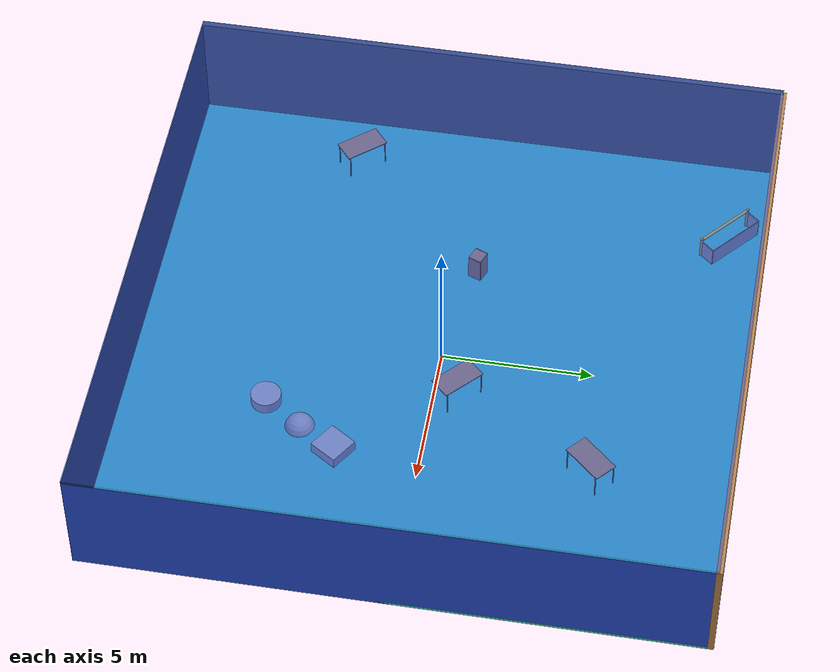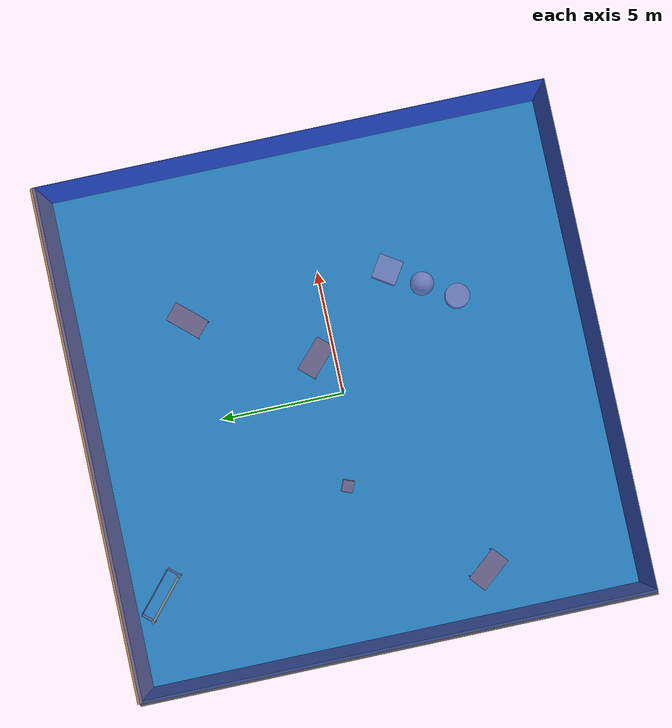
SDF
<sdf version="1.4">
 <world name="default">
  <physics type="ode">
   <max_step_size>0.001</max_step_size>
   <real_time_factor>1</real_time_factor>
   <real_time_update_rate>1000</real_time_update_rate>
   <gravity>0 0 -9.8</gravity>
  </physics>
  <scene><ambient>0.4 0.4 0.4 1</ambient><background>0.7 0.7 0.7 1</background><shadows>1</shadows></scene>
  <model name="Surrounding">
   <static>1</static>
   <link name="Ceiling">
    <collision name="Ceiling_Collision"><geometry><box><size>20 20 0.1</size></box></geometry></collision>
    <visual name="Ceiling_Visual">
     <geometry><box><size>20 20 0.1</size></box></geometry>
     <material>
      <script><uri>file://media/materials/scripts/gazebo.material</uri><name>Gazebo/BlueTransparent</name></script>
     </material>
    </visual>
    <pose>0 0 4.05 0 0 0</pose>
   </link>
   <link name="Wall_South">
    <collision name="Wall_South_Collision">
     <geometry><box><size>20 0 4</size></box></geometry>
     <pose>0 0 2 0 -0 0</pose>
    </collision>
    <visual name="Wall_South_Visual">
     <pose>0 0 2 0 -0 0</pose>
     <geometry><box><size>20 0 4</size></box></geometry>
     <material>
      <script><uri>file://media/materials/scripts/gazebo.material</uri><name>Gazebo/FlatBlack</name></script>
     </material>
    </visual>
    <velocity_decay><linear>0</linear><angular>0</angular></velocity_decay>
    <pose>0 -10 0 0 -0 0</pose>
   </link>
   <link name="Wall_East">
    <collision name="Wall_21_Collision">
     <geometry><box><size>20 0 4</size></box></geometry>
     <pose>0 0 2 0 -0 0</pose>
    </collision>
    <visual name="Wall_21_Visual">
     <pose>0 0 2 0 -0 0</pose>
     <geometry><box><size>20 0 4</size></box></geometry>
     <material>
      <script><uri>file://media/materials/scripts/gazebo.material</uri><name>Gazebo/Blue</name></script>
     </material>
    </visual>
    <velocity_decay><linear>0</linear><angular>0</angular></velocity_decay>
    <pose>10 0 0 0 -0 1.5708</pose>
   </link>
   <link name="Wall_North">
    <collision name="Wall_22_Collision">
     <geometry><box><size>20 0.2 4</size></box></geometry>
     <pose>0 0 2 0 -0 0</pose>
    </collision>
    <visual name="Wall_22_Visual">
     <pose>0 0 2 0 -0 0</pose>
     <geometry><box><size>20 0.2 4</size></box></geometry>
     <material>
      <script><uri>file://media/materials/scripts/gazebo.material</uri><name>Gazebo/WoodFloor</name></script>
     </material>
    </visual>
    <velocity_decay><linear>0</linear><angular>0</angular></velocity_decay>
    <pose>0 10 0 0 -0 0</pose>
   </link>
   <link name="Wall_West">
    <collision name="Wall_23_Collision">
     <geometry><box><size>20 0.2 4</size></box></geometry>
     <pose>0 0 2 0 -0 0</pose>
    </collision>
    <visual name="Wall_23_Visual">
     <pose>0 0 2 0 -0 0</pose>
     <geometry><box><size>20 0.2 4</size></box></geometry>
     <material>
      <script><uri>file://media/materials/scripts/gazebo.material</uri><name>Gazebo/DarkGrey</name></script>
     </material>
    </visual>
    <velocity_decay><linear>0</linear><angular>0</angular></velocity_decay>
    <pose>-10 0 0 0 0 -1.5708</pose>
   </link>
   <link name="Ground_link">
    <collision name="collision">
     <pose>0 0 .05 0 -0 0</pose>
     <geometry><box><size>20 20 0.1</size></box></geometry>
    </collision>
    <visual name="visual">
     <pose>0 0 .05 0 -0 0</pose>
     <geometry><box><size>20 20 0.1</size></box></geometry>
     <material>
      <script>
       <uri>file://media/materials/scripts/gazebo.material</uri>
       <name>Gazebo/TurquoiseGlowOutline</name>
      </script>
     </material>
    </visual>
   </link>
   <static>1</static>
  </model>
  <spherical_coordinates>
   <surface_model>EARTH_WGS84</surface_model>
   <latitude_deg>0</latitude_deg>
   <longitude_deg>0</longitude_deg>
   <elevation>0</elevation>
   <heading_deg>0</heading_deg>
  </spherical_coordinates>
  <light name="lightball_0" type="diffuse">
   <diffuse>0.8 0.8 0.8 1</diffuse>
   <specular>0.2 0.2 0.2 1</specular>
   <attenuation>
    <range>100</range>
    <constant>0.7</constant>
    <linear>0.01</linear>
    <quadratic>0.001</quadratic>
   </attenuation>
   <direction>-0.5 0.1 -0.9</direction>
   <pose>4.09387390023 0.674252719906 1.68369554092 0 0 0</pose>
  </light>
  <light name="lightball_1" type="diffuse">
   <diffuse>0.8 0.8 0.8 1</diffuse>
   <specular>0.2 0.2 0.2 1</specular>
   <attenuation>
    <range>100</range>
    <constant>0.7</constant>
    <linear>0.01</linear>
    <quadratic>0.001</quadratic>
   </attenuation>
   <direction>-0.5 0.1 -0.9</direction>
   <pose>-3.18248141435 9.81189301711 0.747380889639 0 0 0</pose>
  </light>
  <light name="lightball_2" type="diffuse">
   <diffuse>0.8 0.8 0.8 1</diffuse>
   <specular>0.2 0.2 0.2 1</specular>
   <attenuation>
    <range>100</range>
    <constant>0.7</constant>
    <linear>0.01</linear>
    <quadratic>0.001</quadratic>
   </attenuation>
   <direction>-0.5 0.1 -0.9</direction>
   <pose>0.74024953074 -6.58796175102 1.06133566274 0 0 0</pose>
  </light>
  <include><uri>model://table</uri><pose>-8.07649152288 -4.1433371784 0 0 0 2.26924902768</pose></include>
  <include>
   <uri>model://robocup_3Dsim_goal</uri>
   <pose>-6.54293079274 8.60135236005 0 0 0 0.854113257606</pose>
  </include>
  <include><uri>model://cabinet</uri><pose>-3.68131086676 0.610048866029 0 0 0 1.18449746334</pose></include>
  <include><uri>model://table</uri><pose>1.57775595876 0.777547482624 0 0 0 2.38575605745</pose></include>
  <include>
   <uri>model://textured_shapes</uri>
   <pose>3.67418480012 -4.03842061975 0 0 0 2.57119961581</pose>
  </include>
  <include><uri>model://table</uri><pose>4.11522923803 5.47701960027 0 0 0 0.839049048472</pose></include>
 </world>
</sdf>

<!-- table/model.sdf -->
<sdf version="1.5">
  <model name="table">
    <static>true</static>
    <link name="link">
      <collision name="surface">
        <pose>0 0 1.0 0 0 0</pose>
        <geometry>
          <box>
            <size>1.5 0.8 0.03</size>
          </box>
        </geometry>
        <surface>
          <friction>
            <ode>
              <mu>0.6</mu>
              <mu2>0.6</mu2>
            </ode>
          </friction>
        </surface>
      </collision>
      <visual name="visual1">
        <pose>0 0 1.0 0 0 0</pose>
        <geometry>
          <box>
            <size>1.5 0.8 0.03</size>
          </box>
        </geometry>
        <material>
          <script>
            <uri>model://media/materials/scripts/gazebo.material</uri>
            <name>Gazebo/Wood</name>
          </script>
        </material>
      </visual>
      <collision name="front_left_leg">
        <pose>0.68 0.38 0.5 0 0 0</pose>
        <geometry>
          <cylinder>
            <radius>0.02</radius>
            <length>1.0</length>
          </cylinder>
        </geometry>
      </collision>
      <visual name="front_left_leg">
        <pose>0.68 0.38 0.5 0 0 0</pose>
        <geometry>
          <cylinder>
            <radius>0.02</radius>
            <length>1.0</length>
          </cylinder>
        </geometry>
        <material>
          <script>
            <uri>model://media/materials/scripts/gazebo.material</uri>
            <name>Gazebo/Grey</name>
          </script>
        </material>
      </visual>
      <collision name="front_right_leg">
        <pose>0.68 -0.38 0.5 0 0 0</pose>
        <geometry>
          <cylinder>
            <radius>0.02</radius>
            <length>1.0</length>
          </cylinder>
        </geometry>
      </collision>
      <visual name="front_right_leg">
        <pose>0.68 -0.38 0.5 0 0 0</pose>
        <geometry>
          <cylinder>
            <radius>0.02</radius>
            <length>1.0</length>
          </cylinder>
        </geometry>
        <material>
          <script>
            <uri>model://media/materials/scripts/gazebo.material</uri>
            <name>Gazebo/Grey</name>
          </script>
        </material>
      </visual>
      <collision name="back_right_leg">
        <pose>-0.68 -0.38 0.5 0 0 0</pose>
        <geometry>
          <cylinder>
            <radius>0.02</radius>
            <length>1.0</length>
          </cylinder>
        </geometry>
      </collision>
      <visual name="back_right_leg">
        <pose>-0.68 -0.38 0.5 0 0 0</pose>
        <geometry>
          <cylinder>
            <radius>0.02</radius>
            <length>1.0</length>
          </cylinder>
        </geometry>
        <material>
          <script>
            <uri>model://media/materials/scripts/gazebo.material</uri>
            <name>Gazebo/Grey</name>
          </script>
        </material>
      </visual>
      <collision name="back_left_leg">
        <pose>-0.68 0.38 0.5 0 0 0</pose>
        <geometry>
          <cylinder>
            <radius>0.02</radius>
            <length>1.0</length>
          </cylinder>
        </geometry>
      </collision>
      <visual name="back_left_leg">
        <pose>-0.68 0.38 0.5 0 0 0</pose>
        <geometry>
          <cylinder>
            <radius>0.02</radius>
            <length>1.0</length>
          </cylinder>
        </geometry>
        <material>
          <script>
            <uri>model://media/materials/scripts/gazebo.material</uri>
            <name>Gazebo/Grey</name>
          </script>
        </material>
      </visual>
    </link>
  </model>
</sdf>

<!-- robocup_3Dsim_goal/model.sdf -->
<sdf version="1.5">
  <model name="robocup_3d_goal">
    <static>true</static>
    <link name="left_post">
      <pose>0 1.05 0.45 0 0 0</pose>
      <collision name="collision">
        <geometry>
          <cylinder>
            <radius>0.05</radius>
            <length>0.9</length>
          </cylinder>
        </geometry>
      </collision>
      <visual name="visual">
        <geometry>
          <cylinder>
            <radius>0.05</radius>
            <length>0.9</length>
          </cylinder>
        </geometry>
        <material>
          <script>
            <uri>file://media/materials/scripts/gazebo.material</uri>
            <name>Gazebo/ZincYellow</name>
          </script>
        </material>
      </visual>
    </link>
    <link name="left_support_horiz_lower">
      <pose>0.30 1.05 0.01 0 0 0</pose>
      <collision name="collision">
        <geometry>
          <box>
            <size>0.50 0.02 0.02</size>
          </box>
        </geometry>
      </collision>
      <visual name="visual">
        <geometry>
          <box>
            <size>0.50 0.02 0.02</size>
          </box>
        </geometry>
        <material>
          <script>
            <uri>file://media/materials/scripts/gazebo.material</uri>
            <name>Gazebo/White</name>
          </script>
        </material>
      </visual>
    </link>
    <link name="left_support_horiz_upper">
      <pose>0.30 1.05 0.79 0 0 0</pose>
      <collision name="collision">
        <geometry>
          <box>
            <size>0.50 0.02 0.02</size>
          </box>
        </geometry>
      </collision>
      <visual name="visual">
        <geometry>
          <box>
            <size>0.50 0.02 0.02</size>
          </box>
        </geometry>
        <material>
          <script>
            <uri>file://media/materials/scripts/gazebo.material</uri>
            <name>Gazebo/White</name>
          </script>
        </material>
      </visual>
    </link>
    <link name="left_support_vertical">
      <pose>0.56 1.05 0.4 0 1.5708 0</pose>
      <collision name="collision">
        <geometry>
          <box>
            <size>0.80 0.02 0.02</size>
          </box>
        </geometry>
      </collision>
      <visual name="visual">
        <geometry>
          <box>
            <size>0.80 0.02 0.02</size>
          </box>
        </geometry>
        <material>
          <script>
            <uri>file://media/materials/scripts/gazebo.material</uri>
            <name>Gazebo/White</name>
          </script>
        </material>
      </visual>
    </link>
    <link name="right_support_horiz_lower">
      <pose>0.30 -1.05 0.01 0 0 0</pose>
      <collision name="collision">
        <geometry>
          <box>
            <size>0.50 0.02 0.02</size>
          </box>
        </geometry>
      </collision>
      <visual name="visual">
        <geometry>
          <box>
            <size>0.50 0.02 0.02</size>
          </box>
        </geometry>
        <material>
          <script>
            <uri>file://media/materials/scripts/gazebo.material</uri>
            <name>Gazebo/White</name>
          </script>
        </material>
      </visual>
    </link>
    <link name="right_support_horiz_upper">
      <pose>0.30 -1.05 0.79 0 0 0</pose>
      <collision name="collision">
        <geometry>
          <box>
            <size>0.50 0.02 0.02</size>
          </box>
        </geometry>
      </collision>
      <visual name="visual">
        <geometry>
          <box>
            <size>0.50 0.02 0.02</size>
          </box>
        </geometry>
        <material>
          <script>
            <uri>file://media/materials/scripts/gazebo.material</uri>
            <name>Gazebo/White</name>
          </script>
        </material>
      </visual>
    </link>
    <link name="right_support_vertical">
      <pose>0.56 -1.05 0.4 0 1.5708 0</pose>
      <collision name="collision">
        <geometry>
          <box>
            <size>0.80 0.02 0.02</size>
          </box>
        </geometry>
      </collision>
      <visual name="visual">
        <geometry>
          <box>
            <size>0.80 0.02 0.02</size>
          </box>
        </geometry>
        <material>
          <script>
            <uri>file://media/materials/scripts/gazebo.material</uri>
            <name>Gazebo/White</name>
          </script>
        </material>
      </visual>
    </link>
    <link name="center_support_horiz_lower">
      <pose>0.56 0 0.01 0 1.5708 0</pose>
      <collision name="collision">
        <geometry>
          <box>
            <size>0.02 2.08 0.02</size>
          </box>
        </geometry>
      </collision>
      <visual name="visual">
        <geometry>
          <box>
            <size>0.02 2.08 0.02</size>
          </box>
        </geometry>
        <material>
          <script>
            <uri>file://media/materials/scripts/gazebo.material</uri>
            <name>Gazebo/White</name>
          </script>
        </material>
      </visual>
    </link>
    <link name="center_support_horiz_upper">
      <pose>0.56 0 0.79 0 1.5708 0</pose>
      <collision name="collision">
        <geometry>
          <box>
            <size>0.02 2.08 0.02</size>
          </box>
        </geometry>
      </collision>
      <visual name="visual">
        <geometry>
          <box>
            <size>0.02 2.08 0.02</size>
          </box>
        </geometry>
        <material>
          <script>
            <uri>file://media/materials/scripts/gazebo.material</uri>
            <name>Gazebo/White</name>
          </script>
        </material>
      </visual>
    </link>
    <link name="right_post">
      <pose>0 -1.05 0.45 0 0 0</pose>
      <collision name="collision">
        <geometry>
          <cylinder>
            <radius>0.05</radius>
            <length>0.9</length>
          </cylinder>
        </geometry>
      </collision>
      <visual name="visual">
        <geometry>
          <cylinder>
            <radius>0.05</radius>
            <length>0.9</length>
          </cylinder>
        </geometry>
        <material>
          <script>
            <uri>file://media/materials/scripts/gazebo.material</uri>
            <name>Gazebo/ZincYellow</name>
          </script>
        </material>
      </visual>
    </link>
    <link name="crossbar">
      <pose>0 0 0.85 1.57 1.57 0</pose>
      <collision name="collision">
        <geometry>
          <cylinder>
            <radius>0.05</radius>
            <length>2.0</length>
          </cylinder>
        </geometry>
      </collision>
      <visual name="visual">
        <geometry>
          <cylinder>
            <radius>0.05</radius>
            <length>2.0</length>
          </cylinder>
        </geometry>
        <material>
          <script>
            <uri>file://media/materials/scripts/gazebo.material</uri>
            <name>Gazebo/ZincYellow</name>
          </script>
        </material>
      </visual>
    </link>
    <link name="center_net">
      <pose>0.56 0 0.40 0 0 0</pose>
      <collision name="collision">
        <geometry>
          <box>
            <size>0.01 2.1 0.80</size>
          </box>
        </geometry>
      </collision>
      <visual name="visual">
        <geometry>
          <box>
            <size>0.01 2.1 0.80</size>
          </box>
        </geometry>
        <material>
          <script>
            <uri>model://../model_source/models/robocup09_spl_field/materials/scripts/</uri>
            <uri>model://../model_source/models/robocup09_spl_field/materials/textures/</uri>
            <name>RoboCup/Net</name>
          </script>
        </material>
      </visual>
    </link>
    <link name="left_net">
      <pose>0.30 1.05 0.40 0 0 0</pose>
      <collision name="collision">
        <geometry>
          <box>
            <size>0.50 0.01 0.76</size>
          </box>
        </geometry>
      </collision>
      <visual name="visual">
        <geometry>
          <box>
            <size>0.50 0.01 0.76</size>
          </box>
        </geometry>
        <material>
          <script>
            <uri>model://../model_source/models/robocup09_spl_field/materials/scripts/</uri>
            <uri>model://../model_source/models/robocup09_spl_field/materials/textures/</uri>
            <name>RoboCup/Net</name>
          </script>
        </material>
      </visual>
    </link>
    <link name="right_net">
      <pose>0.30 -1.05 0.40 0 0 0</pose>
      <collision name="collision">
        <geometry>
          <box>
            <size>0.50 0.01 0.76</size>
          </box>
        </geometry>
      </collision>
      <visual name="visual">
        <geometry>
          <box>
            <size>0.50 0.01 0.76</size>
          </box>
        </geometry>
        <material>
          <script>
            <uri>model://../model_source/models/robocup09_spl_field/materials/scripts/</uri>
            <uri>model://../model_source/models/robocup09_spl_field/materials/textures/</uri>
            <name>RoboCup/Net</name>
          </script>
        </material>
      </visual>
    </link>
  </model>
</sdf>

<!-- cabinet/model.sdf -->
<sdf version="1.5">
  <model name="cabinet">
    <static>true</static>
    <link name="cabinet_bottom_plate">
      <inertial>
        <pose>0 0 -1 0 0 0</pose>
        <inertia>
          <ixx>2.050000</ixx>
          <ixy>0</ixy>
          <ixz>0</ixz>
          <iyy>2.050000</iyy>
          <iyz>0</iyz>
          <izz>2.050000</izz>
        </inertia>
        <mass>25.000000</mass>
      </inertial>
      <collision name="cabinet_bottom_plate_geom">
        <pose>0 0 0.010000 0 0 0</pose>
        <geometry>
          <box>
            <size>0.450000 0.450000 0.020000</size>
          </box>
        </geometry>
      </collision>
      <visual name="cabinet_bottom_plate_geom_visual">
        <pose>0 0 0.010000 0 0 0</pose>
        <geometry>
          <box>
            <size>0.450000 0.450000 0.020000</size>
          </box>
        </geometry>
        <material>
          <script>
            <uri>model://media/materials/scripts/gazebo.material</uri>
            <name>Gazebo/Wood</name>
          </script>
        </material>
      </visual>
      <collision name="cabinet_bottom_plate_geom_cabinet_back_plate">
        <pose>0.235000 0 0.510000 0 0 0</pose>
        <geometry>
          <box>
            <size>0.020000 0.450000 1.020000</size>
          </box>
        </geometry>
      </collision>
      <visual name="cabinet_bottom_plate_geom_cabinet_back_plate_visual">
        <pose>0.235000 0 0.510000 0 0 0</pose>
        <geometry>
          <box>
            <size>0.020000 0.450000 1.020000</size>
          </box>
        </geometry>
        <material>
          <script>
            <uri>model://media/materials/scripts/gazebo.material</uri>
            <name>Gazebo/Wood</name>
          </script>
        </material>
      </visual>
      <collision name="cabinet_bottom_plate_geom_cabinet_left_plate">
        <pose>0 0.235000 0.510000 0 0 0</pose>
        <geometry>
          <box>
            <size>0.450000 0.020000 1.020000</size>
          </box>
        </geometry>
      </collision>
      <visual name="cabinet_bottom_plate_geom_cabinet_left_plate_visual">
        <pose>0 0.235000 0.510000 0 0 0</pose>
        <geometry>
          <box>
            <size>0.450000 0.020000 1.020000</size>
          </box>
        </geometry>
        <material>
          <script>
            <uri>model://media/materials/scripts/gazebo.material</uri>
            <name>Gazebo/Wood</name>
          </script>
        </material>
      </visual>
      <collision name="cabinet_bottom_plate_geom_cabinet_middle_plate">
        <pose>0 0 0.510000 0 0 0</pose>
        <geometry>
          <box>
            <size>0.450000 0.450000 0.020000</size>
          </box>
        </geometry>
      </collision>
      <visual name="cabinet_bottom_plate_geom_cabinet_middle_plate_visual">
        <pose>0 0 0.510000 0 0 0</pose>
        <geometry>
          <box>
            <size>0.450000 0.450000 0.020000</size>
          </box>
        </geometry>
        <material>
          <script>
            <uri>model://media/materials/scripts/gazebo.material</uri>
            <name>Gazebo/Wood</name>
          </script>
        </material>
      </visual>
      <collision name="cabinet_bottom_plate_geom_cabinet_right_plate">
        <pose>0 -0.235000 0.510000 0 0 0</pose>
        <geometry>
          <box>
            <size>0.450000 0.020000 1.020000</size>
          </box>
        </geometry>
      </collision>
      <visual name="cabinet_bottom_plate_geom_cabinet_right_plate_visual">
        <pose>0 -0.235000 0.510000 0 0 0</pose>
        <geometry>
          <box>
            <size>0.450000 0.020000 1.020000</size>
          </box>
        </geometry>
        <material>
          <script>
            <uri>model://media/materials/scripts/gazebo.material</uri>
            <name>Gazebo/Wood</name>
          </script>
        </material>
      </visual>
      <collision name="cabinet_bottom_plate_geom_cabinet_top_plate">
        <pose>0 0 1.010000 0 0 0</pose>
        <geometry>
          <box>
            <size>0.450000 0.450000 0.020000</size>
          </box>
        </geometry>
      </collision>
      <visual name="cabinet_bottom_plate_geom_cabinet_top_plate_visual">
        <pose>0 0 1.010000 0 0 0</pose>
        <geometry>
          <box>
            <size>0.450000 0.450000 0.020000</size>
          </box>
        </geometry>
        <material>
          <script>
            <uri>model://media/materials/scripts/gazebo.material</uri>
            <name>Gazebo/Wood</name>
          </script>
        </material>
      </visual>
    </link>
  </model>
</sdf>

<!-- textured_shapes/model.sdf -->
<sdf version="1.6">
  <model name="textured_shapes">
    <pose>0 0 0.5 0 0 0</pose>
    <link name="box">
      <pose>0 -1.5 0 0 0 0</pose>
      <collision name="collision">
        <geometry>
          <box>
            <size>1 1 1</size>
          </box>
        </geometry>
      </collision>
      <visual name="visual">
        <geometry>
          <box>
            <size>1 1 1</size>
          </box>
        </geometry>
        <material>
          <script>
            <uri>model://../model_source/models/textured_shapes/materials/scripts</uri>
            <uri>model://../model_source/models/textured_shapes/materials/textures</uri>
            <name>TexturedShape/Squares</name>
          </script>
        </material>
      </visual>
    </link>
    <link name="sphere">
      <collision name="collision">
        <geometry>
          <sphere>
            <radius>0.5</radius>
          </sphere>
        </geometry>
      </collision>
      <visual name="visual">
        <geometry>
          <sphere>
            <radius>0.5</radius>
          </sphere>
        </geometry>
        <material>
          <script>
            <uri>model://../model_source/models/textured_shapes/materials/scripts</uri>
            <uri>model://../model_source/models/textured_shapes/materials/textures</uri>
            <name>TexturedShape/Squares</name>
          </script>
        </material>
      </visual>
    </link>
    <link name="cylinder">
      <pose>0 1.5 0 0 0 0</pose>
      <collision name="collision">
        <geometry>
          <cylinder>
            <radius>0.5</radius>
            <length>1</length>
          </cylinder>
        </geometry>
      </collision>
      <visual name="visual">
        <geometry>
          <cylinder>
            <radius>0.5</radius>
            <length>1</length>
          </cylinder>
        </geometry>
        <material>
          <script>
            <uri>model://../model_source/models/textured_shapes/materials/scripts</uri>
            <uri>model://../model_source/models/textured_shapes/materials/textures</uri>
            <name>TexturedShape/Squares</name>
          </script>
        </material>
      </visual>
    </link>
  </model>
</sdf>
